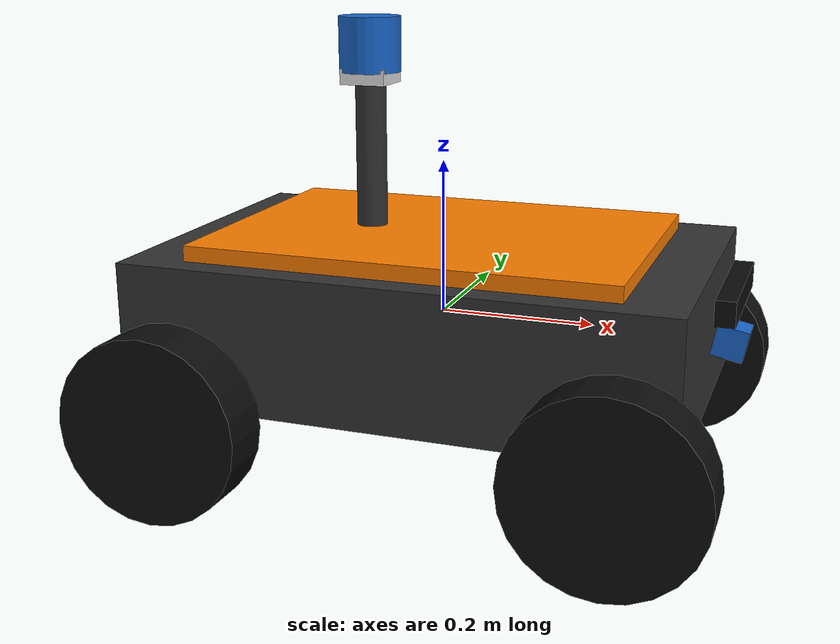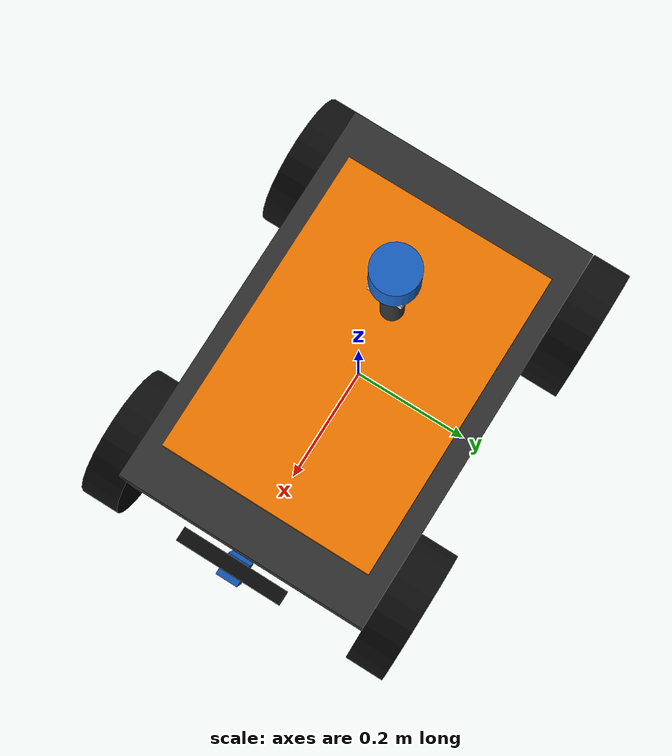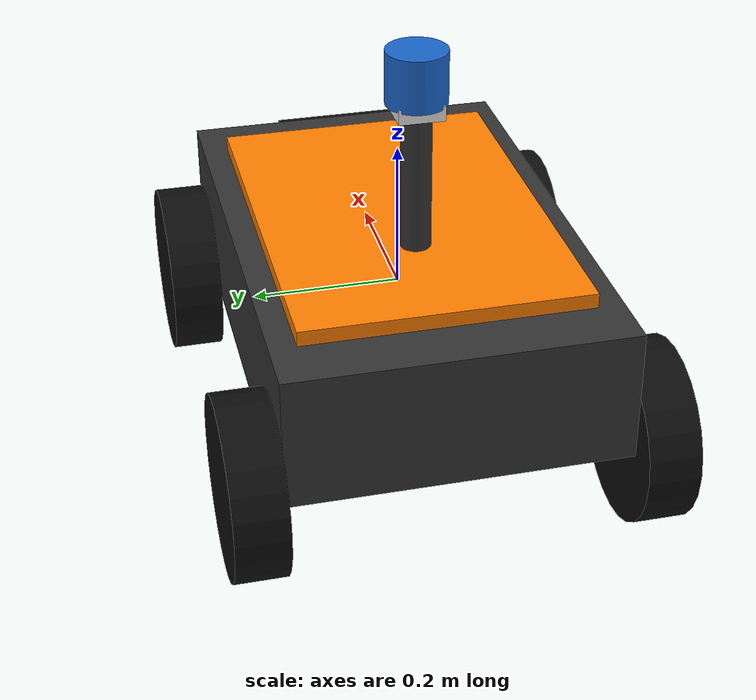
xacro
<?xml version="1.0"?>
<robot name="robot" xmlns:xacro="http://www.ros.org/wiki/xacro">

  <!--
    MATERIALS
   -->
  <material name="dark_grey"><color rgba="0.2 0.2 0.2 1"/></material>
  <material name="orange">   <color rgba="1.0 0.5 0.0 1"/></material>
  <material name="black">    <color rgba="0.05 0.05 0.05 1"/></material>
  <material name="white">    <color rgba="0.9 0.9 0.9 1"/></material>
  <material name="blue">     <color rgba="0.1 0.4 0.8 1"/></material>
  <material name="green">    <color rgba="0.1 0.8 0.1 1"/></material>

  <!--
       base_footprint  →  base_link
   -->
  <link name="base_footprint"/>

  <joint name="base_joint" type="fixed">
    <parent link="base_footprint"/>
    <child  link="base_link"/>
    <origin xyz="0 0 0.0" rpy="0 0 0"/>
  </joint>

  <link name="base_link">
    <visual>
      <geometry><box size="0.7 0.45 0.18"/></geometry>
      <material name="dark_grey"/>
    </visual>
    <collision>
      <geometry><box size="0.7 0.45 0.18"/></geometry>
    </collision>
    <inertial>
      <mass value="15"/>
      <origin xyz="0 0 0" rpy="0 0 0"/>
      <inertia ixx="0.3" iyy="0.5" izz="0.6"
               ixy="0"   ixz="0"   iyz="0"/>
    </inertial>
  </link>
  <gazebo reference="base_link">
  <material>Gazebo/DarkGrey</material>
</gazebo>

  <!-- top panel  -->
  <link name="top_panel">
    <visual>
      <geometry><box size="0.55 0.38 0.02"/></geometry>
      <material name="orange"/>
    </visual>
    <inertial>
      <mass value="0.5"/>
      <origin xyz="0 0 0" rpy="0 0 0"/>
      <inertia ixx="0.01" iyy="0.01" izz="0.01"
               ixy="0"    ixz="0"    iyz="0"/>
    </inertial>
  </link>
  <gazebo reference="top_panel">
  <material>Gazebo/Orange</material>
</gazebo>
  <joint name="top_panel_joint" type="fixed">
    <parent link="base_link"/>
    <child  link="top_panel"/>
    <origin xyz="0 0 0.1" rpy="0 0 0"/>
  </joint>

  <!-- vertical mast  -->
  <link name="mast_link">
    <visual>
      <geometry><cylinder radius="0.02" length="0.25"/></geometry>
      <material name="dark_grey"/>
    </visual>
    <collision>
      <geometry><cylinder radius="0.02" length="0.25"/></geometry>
    </collision>
    <inertial>
      <mass value="0.3"/>
      <origin xyz="0 0 0" rpy="0 0 0"/>
      <inertia ixx="0.001" iyy="0.001" izz="0.001"
               ixy="0"     ixz="0"     iyz="0"/>
    </inertial>
  </link>
  <gazebo reference="mast_link">
  <material>Gazebo/DarkGrey</material>
</gazebo>
  <joint name="mast_joint" type="fixed">
    <parent link="base_link"/>
    <child  link="mast_link"/>
    <origin xyz="-0.1 0 0.215" rpy="0 0 0"/>
  </joint>

  <!--
       WHEELS

  -->
  <xacro:macro name="wheel" params="name x y">

    <link name="${name}">
      <visual>
        <origin xyz="0 0 0" rpy="1.5707 0 0"/>
        <geometry><cylinder radius="0.12" length="0.07"/></geometry>
        <material name="black"/>
      </visual>
      <collision>
        <origin xyz="0 0 0" rpy="1.5707 0 0"/>
        <geometry><cylinder radius="0.12" length="0.07"/></geometry>
      </collision>
      <inertial>
        <mass value="1.5"/>
        <origin xyz="0 0 0" rpy="0 0 0"/>
        <inertia ixx="0.012" iyy="0.012" izz="0.021"
                 ixy="0"     ixz="0"     iyz="0"/>
      </inertial>
    </link>
    <gazebo reference="${name}">
  <material>Gazebo/Black</material>
</gazebo>

    <joint name="${name}_joint" type="continuous">
      <parent link="base_link"/>
      <child  link="${name}"/>
      <origin xyz="${x} ${y} -0.1" rpy="0 0 0"/>
      <axis xyz="0 1 0"/>
      <dynamics damping="0.05" friction="0.0"/>
    </joint>

    <!-- Gazebo friction / contact for this wheel -->
    <gazebo reference="${name}">
      <mu1>1.5</mu1>
      <mu2>1.5</mu2>
      <kp>1e6</kp>
      <kd>10.0</kd>
      <minDepth>0.001</minDepth>
      <material>Gazebo/DarkGrey</material>
    </gazebo>

  </xacro:macro>

  <!-- wheels -->
  <xacro:wheel name="front_left_wheel"  x=" 0.28" y=" 0.26"/>
  <xacro:wheel name="front_right_wheel" x=" 0.28" y="-0.26"/>
  <xacro:wheel name="rear_left_wheel"   x="-0.28" y=" 0.26"/>
  <xacro:wheel name="rear_right_wheel"  x="-0.28" y="-0.26"/>

  <!--
       LIDAR
   -->
  <link name="lidar_link">
    <visual>
      <geometry><cylinder radius="0.04" length="0.07"/></geometry>
      <material name="blue"/>
    </visual>
    <collision>
      <geometry><cylinder radius="0.04" length="0.07"/></geometry>
    </collision>
    <inertial>
      <mass value="0.2"/>
      <origin xyz="0 0 0" rpy="0 0 0"/>
      <inertia ixx="0.001" iyy="0.001" izz="0.001"
               ixy="0"     ixz="0"     iyz="0"/>
    </inertial>
  </link>
  <gazebo reference="lidar_link">
  <material>Gazebo/Blue</material>
</gazebo>
  <joint name="lidar_joint" type="fixed">
    <parent link="mast_link"/>
    <child  link="lidar_link"/>
    <origin xyz="0 0 0.13" rpy="0 0 0"/>
  </joint>

  <gazebo reference="lidar_link">
    <sensor type="ray" name="lidar_sensor">
      <always_on>true</always_on>
      <visualize>false</visualize>
      <update_rate>10</update_rate>
      <ray>
        <scan>
          <horizontal>
            <samples>360</samples>
            <resolution>1</resolution>
            <min_angle>-3.14159</min_angle>
            <max_angle> 3.14159</max_angle>
          </horizontal>
        </scan>
      </ray>
        <range>
          <min>0.15</min><max>15.0</max>
          <resolution>0.01</resolution>
        </range>
        <noise>
          <type>gaussian</type>
          <mean>0.0</mean><stddev>0.01</stddev>
        </noise>
      <plugin name="lidar_plugin"
              filename="libgazebo_ros_ray_sensor.so">
        <ros>
          <remapping>~/out:=/scan</remapping>
        </ros>
        <output_type>sensor_msgs/LaserScan</output_type>
        <frame_name>lidar_link</frame_name>
      </plugin>
    </sensor>
  </gazebo>

  <!--
       IMU
   -->
  <link name="imu_link">
    <visual>
      <geometry><box size="0.04 0.04 0.01"/></geometry>
      <material name="green"/>
    </visual>
    <collision>
      <geometry><box size="0.04 0.04 0.01"/></geometry>
    </collision>
    <inertial>
      <mass value="0.05"/>
      <origin xyz="0 0 0" rpy="0 0 0"/>
      <inertia ixx="0.0001" iyy="0.0001" izz="0.0001"
               ixy="0"      ixz="0"      iyz="0"/>
    </inertial>
  </link>
  <gazebo reference="imu_link">
  <material>Gazebo/Green</material>
</gazebo>
  <joint name="imu_joint" type="fixed">
    <parent link="base_link"/>
    <child  link="imu_link"/>
    <origin xyz="0 0 0.05" rpy="0 0 0"/>
  </joint>
<gazebo reference="base_link">
  <material>Gazebo/DarkGrey</material>
</gazebo>
  <gazebo reference="imu_link">
    <sensor name="imu_sensor" type="imu">
      <always_on>true</always_on>
      <update_rate>100</update_rate>
      <plugin name="imu_plugin"
              filename="libgazebo_ros_imu_sensor.so">
        <ros>
          <remapping>~/out:=/imu/data</remapping>
        </ros>
        <initial_orientation_as_reference>false
        </initial_orientation_as_reference>
        <frame_name>imu_link</frame_name>
      </plugin>
    </sensor>
  </gazebo>

  <!--
       GPS
   -->
  <link name="gps_link">
    <visual>
      <geometry><box size="0.06 0.06 0.02"/></geometry>
      <material name="white"/>
    </visual>
    <collision>
      <geometry><box size="0.06 0.06 0.02"/></geometry>
    </collision>
    <inertial>
      <mass value="0.1"/>
      <origin xyz="0 0 0" rpy="0 0 0"/>
      <inertia ixx="0.0001" iyy="0.0001" izz="0.0001"
               ixy="0"      ixz="0"      iyz="0"/>
    </inertial>
  </link>
  <gazebo reference="gps_link">
  <material>Gazebo/White</material>
</gazebo>
  <joint name="gps_joint" type="fixed">
    <parent link="mast_link"/>
    <child  link="gps_link"/>
    <origin xyz="0 0 0.09" rpy="0 0 0"/>
  </joint>

  <gazebo reference="gps_link">
    <sensor name="gps_sensor" type="gps">
      <always_on>true</always_on>
      <update_rate>1</update_rate>
      <plugin name="gps_plugin"
              filename="libgazebo_ros_gps_sensor.so">
        <ros>
          <remapping>~/out:=/gps/fix</remapping>
        </ros>
        <frame_name>gps_link</frame_name>
      </plugin>
    </sensor>
  </gazebo>

  <!--
       STEREO CAMERAS
   -->
   <link name="stereo_bar_link">
    <visual>
      <geometry><box size="0.025 0.19 0.032"/></geometry>
      <material name="black"/>
    </visual>
    <collision>
      <geometry><box size="0.05 0.22 0.05"/></geometry>
    </collision>
    <inertial>
      <mass value="0.15"/>
      <origin xyz="0 0 0" rpy="0 0 0"/>
      <inertia ixx="0.001" iyy="0.001" izz="0.001"
               ixy="0"     ixz="0"     iyz="0"/>
    </inertial>
  </link>

<link name="stereocamera_link">
  <visual>
    <geometry><box size="0.025 0.090 0.025"/></geometry>
    <material name="black"/>
  </visual>
  <collision>
    <geometry><box size="0.025 0.090 0.025"/></geometry>
  </collision>
  <inertial>
    <mass value="0.072"/>
    <origin xyz="0 0 0" rpy="0 0 0"/>
    <inertia ixx="0.001" iyy="0.001" izz="0.001"
             ixy="0"     ixz="0"     iyz="0"/>
  </inertial>
</link>
<joint name="stereocamera_joint" type="fixed">
      <parent link="stereo_bar_link"/>
      <child link="stereocamera_link"/>
      <origin xyz="0.0 0 0.0" rpy="0 0 0"/>
    </joint>

    <link name="stereocamera_link_optical"></link>

    <joint name="stereocamera_optical_joint" type="fixed">
      <parent link="stereocamera_link"/>
      <child link="stereocamera_link_optical"/>
      <origin xyz="0 0 0" rpy="-1.5708 0 -1.5708"/>
    </joint>

 <gazebo reference="stereocamera_link">
    <sensor name="camera" type="depth">
      <update_rate>30.0</update_rate>
      <visualize>true</visualize>
      <camera>
        <horizontal_fov>1.50098</horizontal_fov>
        <image><width>640</width><height>480</height><format>R8G8B8</format></image>
        <clip><near>0.1</near><far>10.0</far></clip>
      </camera>
       <plugin name="camera_controller" filename="libgazebo_ros_camera.so">
        <ros>
          <remapping>camera/image_raw:=color/image_raw</remapping>
          <remapping>camera/depth/image_raw:=depth/image_raw</remapping>
          <remapping>camera/points:=depth/color/points</remapping>
        </ros>
        <camera_name>camera</camera_name>
        <frame_name>stereocamera_link_optical</frame_name>
      </plugin>
    </sensor>
  </gazebo>
  <joint name="stereo_bar_joint" type="fixed">
  <parent link="base_link"/>
  <child  link="stereo_bar_link"/>
  <origin xyz="0.375 0 0.06" rpy="0 0 0"/>
</joint>

  <!--
       MONO FRONT CAMERA
   -->
  <link name="camera_link">
    <visual>
      <geometry><box size="0.04 0.04 0.04"/></geometry>
      <material name="blue"/>
    </visual>
    <collision>
      <geometry><box size="0.04 0.04 0.04"/></geometry>
    </collision>
    <inertial>
      <mass value="0.1"/>
      <origin xyz="0 0 0" rpy="0 0 0"/>
      <inertia ixx="0.001" iyy="0.001" izz="0.001"
               ixy="0"     ixz="0"     iyz="0"/>
    </inertial>
  </link>
  <gazebo reference="camera_link">
  <material>Gazebo/Black</material>
</gazebo>
  <joint name="camera_joint" type="fixed">
    <parent link="base_link"/>
    <child  link="camera_link"/>
    <origin xyz="0.375 0 0.0" rpy="0 0.2 0"/>
  </joint>

  <gazebo reference="camera_link">
    <sensor type="camera" name="front_camera">
      <always_on>true</always_on>
      <update_rate>30</update_rate>
      <camera>
        <horizontal_fov>1.396</horizontal_fov>
        <image>
          <width>640</width><height>480</height>
          <format>R8G8B8</format>
        </image>
        <clip><near>0.05</near><far>100</far></clip>
        <noise>
          <type>gaussian</type>
          <mean>0</mean><stddev>0.005</stddev>
        </noise>
      </camera>
      <plugin name="camera_plugin"
              filename="libgazebo_ros_camera.so">
        <ros>
          <remapping>image_raw:=/camera/image_raw</remapping>
          <remapping>camera_info:=/camera/camera_info</remapping>
        </ros>
        <frame_name>camera_link</frame_name>
      </plugin>
    </sensor>
  </gazebo>

  <!--
       DIFF DRIVE  ← THE MOVEMENT PLUGIN
        -->
  <gazebo>
    <plugin name="diff_drive"
            filename="libgazebo_ros_diff_drive.so">
      <ros>
        <remapping>cmd_vel:=/cmd_vel</remapping>
        <remapping>odom:=/odom</remapping>
      </ros>
      <num_wheel_pairs>2</num_wheel_pairs>
      <left_joint>front_left_wheel_joint</left_joint>
      <left_joint>rear_left_wheel_joint</left_joint>
      <right_joint>front_right_wheel_joint</right_joint>
      <right_joint>rear_right_wheel_joint</right_joint>
      <wheel_separation>0.52</wheel_separation>
      <wheel_diameter>0.24</wheel_diameter>
      <max_wheel_torque>50.0</max_wheel_torque>
      <max_wheel_acceleration>2.0</max_wheel_acceleration>
      <publish_odom>true</publish_odom>
      <publish_odom_tf>true</publish_odom_tf>
      <odometry_frame>odom</odometry_frame>
      <robot_base_frame>base_link</robot_base_frame>
    </plugin>
  </gazebo>

  <!--
       JOINT STATE PUBLISHER
   -->
  <gazebo>
    <plugin name="joint_state_publisher"
            filename="libgazebo_ros_joint_state_publisher.so">
      <update_rate>50</update_rate>
      <joint_name>front_left_wheel_joint</joint_name>
      <joint_name>front_right_wheel_joint</joint_name>
      <joint_name>rear_left_wheel_joint</joint_name>
      <joint_name>rear_right_wheel_joint</joint_name>
    </plugin>
  </gazebo>

</robot>
